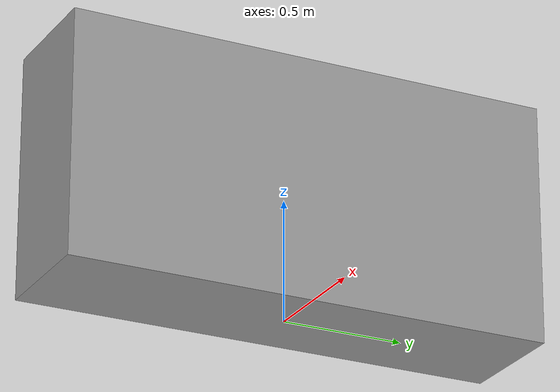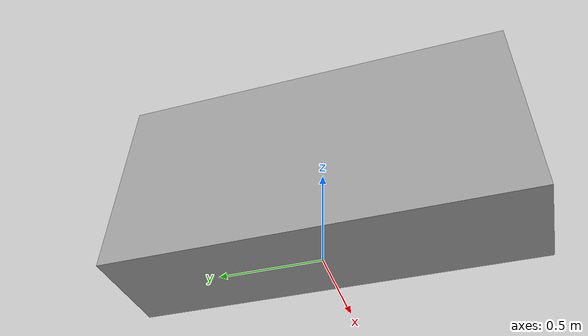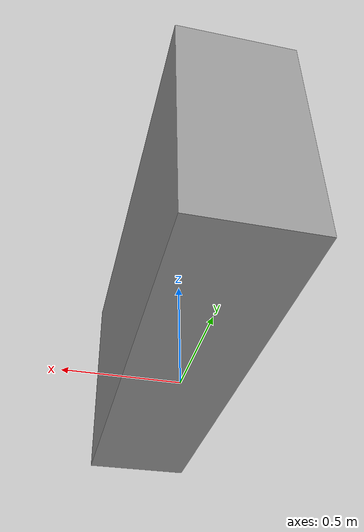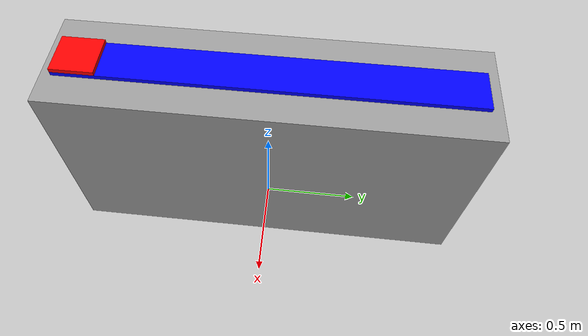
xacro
<?xml version="1.0"?>
<robot xmlns:xacro="http://ros.org/wiki/xacro" name="table_rail_montage">

  <!-- rail_joint_type : "fixed" pour Gazebo (7 DOF → gravity comp OK)
                         "prismatic" pour RViz / visualisation standalone -->
  <!-- Position initiale du rail (m) — passée depuis le launch file.
       Le joint est fixe pour compatibilité avec FrankaHardwareInterface/KDL. -->
  <xacro:arg name="rail_position" default="0.0"/>

  <!-- Table (root link - KDL doesn't support inertia here, but Gazebo needs a small mass) -->
  <link name="table">
    <visual>
      <origin xyz="0 0 0.5"/>
      <geometry><box size="0.5 2 1"/></geometry>
      <material name="grey"><color rgba="0.6 0.6 0.6 1.0"/></material>
    </visual>
    <collision>
      <origin xyz="0 0 0.5"/>
      <geometry><box size="0.5 2 1"/></geometry>
    </collision>
    <inertial>
      <origin xyz="0 0 0.5"/>
      <mass value="50.0"/>
      <inertia ixx="0.001" iyy="0.001" izz="0.001" ixy="0" ixz="0" iyz="0"/>
    </inertial>
  </link>

  <!-- Rail sur la table-->
  <link name="rail">
    <visual>
      <origin xyz="0 0 1.01"/>
      <geometry><box size="0.20 1.9 0.02"/></geometry>
      <material name="blue"><color rgba="0 0 1 1.0"/></material>
    </visual>
    <collision>
      <origin xyz="0 0 1.01"/>
      <geometry><box size="0.20 1.9 0.02"/></geometry>
    </collision>
    <inertial>
      <origin xyz="0 0 1.01"/>
      <mass value="5.0"/>
      <inertia ixx="1.508" iyy="0.0167" izz="1.504" ixy="0" ixz="0" iyz="0"/>
    </inertial>
  </link>

  <joint name="table_to_rail" type="fixed">
    <parent link="table"/>
    <child link="rail"/>
    <origin xyz="0 0 0"/>
  </joint>

  <!-- La pièce qui glisse ("montage") -->
  <link name="montage">
    <visual>
      <origin xyz="0.0 0 1.03"/>
      <geometry><box size="0.2 0.2 0.02"/></geometry>
      <material name="red"><color rgba="1 0 0 1.0"/></material>
    </visual>
    <collision>
      <origin xyz="0.0 0 1.03"/>
      <geometry><box size="0.2 0.2 0.02"/></geometry>
    </collision>
    <inertial>
      <origin xyz="0.0 0 1.03"/>
      <mass value="1.0"/>
      <inertia ixx="0.00333" iyy="0.00333" izz="0.00667" ixy="0" ixz="0" iyz="0"/>
    </inertial>
  </link>

  <joint name="rail_joint" type="fixed">
    <origin xyz="0 ${-0.85 + $(arg rail_position)} 0" rpy="0 0 0"/>
    <parent link="rail"/>
    <child link="montage"/>
  </joint>

</robot>
